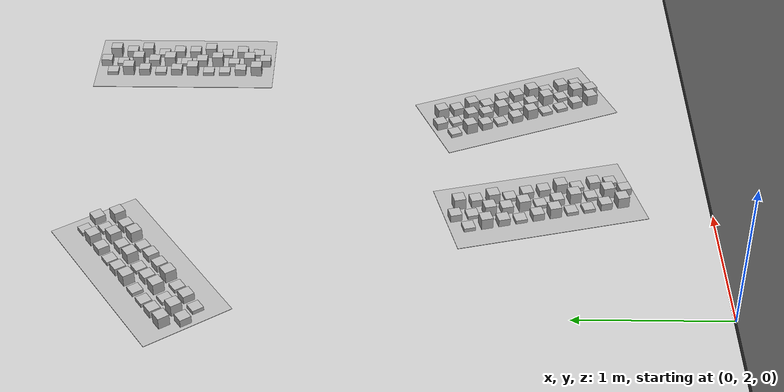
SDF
<sdf version="1.6">
 <world name="default">
  <model name="ground_plane">
   <static>1</static>
   <link name="link">
    <collision name="collision">
     <geometry><plane><normal>0 0 1</normal><size>100 100</size></plane></geometry>
     <surface>
      <contact><collide_bitmask>65535</collide_bitmask></contact>
      <friction><ode><mu>100</mu><mu2>50</mu2></ode></friction>
     </surface>
    </collision>
    <visual name="visual">
     <cast_shadows>0</cast_shadows>
     <geometry><plane><normal>0 0 1</normal><size>100 100</size></plane></geometry>
     <material>
      <script><uri>file://media/materials/scripts/gazebo.material</uri><name>Gazebo/Grey</name></script>
     </material>
    </visual>
   </link>
  </model>
  <model name="frc2016_roughterrain_clone_clone_12_clone">
   <static>1</static>
   <link name="link">
    <visual name="platform">
     <pose>0 0 0.08269 0 -0 0</pose>
     <geometry><box><size>1.27 0.5969 0.003175</size></box></geometry>
    </visual>
    <collision name="platform">
     <pose>0 0 0.08269 0 -0 0</pose>
     <geometry><box><size>1.27 0.5969 0.003175</size></box></geometry>
    </collision>
    <visual name="row1_block1_sm">
     <pose>0.51435 0.1143 0.09698 0 -0 0</pose>
     <geometry><box><size>0.0762 0.0762 0.0254</size></box></geometry>
    </visual>
    <collision name="row1_block1_sm">
     <pose>0.51435 0.1143 0.09698 0 -0 0</pose>
     <geometry><box><size>0.0762 0.0762 0.0254</size></box></geometry>
    </collision>
    <visual name="row1_block2_lg">
     <pose>0.40005 0.1143 0.12238 0 -0 0</pose>
     <geometry><box><size>0.0762 0.0762 0.0762</size></box></geometry>
    </visual>
    <collision name="row1_block2_lg">
     <pose>0.40005 0.1143 0.12238 0 -0 0</pose>
     <geometry><box><size>0.0762 0.0762 0.0762</size></box></geometry>
    </collision>
    <visual name="row1_block3_md">
     <pose>0.28575 0.1143 0.10968 0 -0 0</pose>
     <geometry><box><size>0.0762 0.0762 0.0508</size></box></geometry>
    </visual>
    <collision name="row1_block3_md">
     <pose>0.28575 0.1143 0.10968 0 -0 0</pose>
     <geometry><box><size>0.0762 0.0762 0.0508</size></box></geometry>
    </collision>
    <visual name="row1_block4_sm">
     <pose>0.17145 0.1143 0.09698 0 -0 0</pose>
     <geometry><box><size>0.0762 0.0762 0.0254</size></box></geometry>
    </visual>
    <collision name="row1_block4_sm">
     <pose>0.17145 0.1143 0.09698 0 -0 0</pose>
     <geometry><box><size>0.0762 0.0762 0.0254</size></box></geometry>
    </collision>
    <visual name="row1_block5_md">
     <pose>0.05715 0.1143 0.10968 0 -0 0</pose>
     <geometry><box><size>0.0762 0.0762 0.0508</size></box></geometry>
    </visual>
    <collision name="row1_block5_md">
     <pose>0.05715 0.1143 0.10968 0 -0 0</pose>
     <geometry><box><size>0.0762 0.0762 0.0508</size></box></geometry>
    </collision>
    <visual name="row1_block6_lg">
     <pose>-0.05715 0.1143 0.12238 0 -0 0</pose>
     <geometry><box><size>0.0762 0.0762 0.0762</size></box></geometry>
    </visual>
    <collision name="row1_block6_lg">
     <pose>-0.05715 0.1143 0.12238 0 -0 0</pose>
     <geometry><box><size>0.0762 0.0762 0.0762</size></box></geometry>
    </collision>
    <visual name="row1_block7_sm">
     <pose>-0.17145 0.1143 0.09698 0 -0 0</pose>
     <geometry><box><size>0.0762 0.0762 0.0254</size></box></geometry>
    </visual>
    <collision name="row1_block7_sm">
     <pose>-0.17145 0.1143 0.09698 0 -0 0</pose>
     <geometry><box><size>0.0762 0.0762 0.0254</size></box></geometry>
    </collision>
    <visual name="row1_block8_sm">
     <pose>-0.28575 0.1143 0.09698 0 -0 0</pose>
     <geometry><box><size>0.0762 0.0762 0.0254</size></box></geometry>
    </visual>
    <collision name="row1_block8_sm">
     <pose>-0.28575 0.1143 0.09698 0 -0 0</pose>
     <geometry><box><size>0.0762 0.0762 0.0254</size></box></geometry>
    </collision>
    <visual name="row1_block9_md">
     <pose>-0.40005 0.1143 0.10968 0 -0 0</pose>
     <geometry><box><size>0.0762 0.0762 0.0508</size></box></geometry>
    </visual>
    <collision name="row1_block9_md">
     <pose>-0.40005 0.1143 0.10968 0 -0 0</pose>
     <geometry><box><size>0.0762 0.0762 0.0508</size></box></geometry>
    </collision>
    <visual name="row1_block10_lg">
     <pose>-0.51435 0.1143 0.12238 0 -0 0</pose>
     <geometry><box><size>0.0762 0.0762 0.0762</size></box></geometry>
    </visual>
    <collision name="row1_block10_lg">
     <pose>-0.51435 0.1143 0.12238 0 -0 0</pose>
     <geometry><box><size>0.0762 0.0762 0.0762</size></box></geometry>
    </collision>
    <visual name="row2_block1_md">
     <pose>0.5715 0 0.10968 0 -0 0</pose>
     <geometry><box><size>0.0762 0.0762 0.0508</size></box></geometry>
    </visual>
    <collision name="row2_block1_md">
     <pose>0.5715 0 0.10968 0 -0 0</pose>
     <geometry><box><size>0.0762 0.0762 0.0508</size></box></geometry>
    </collision>
    <visual name="row2_block2_sm">
     <pose>0.4572 0 0.09698 0 -0 0</pose>
     <geometry><box><size>0.0762 0.0762 0.0254</size></box></geometry>
    </visual>
    <collision name="row2_block2_sm">
     <pose>0.4572 0 0.09698 0 -0 0</pose>
     <geometry><box><size>0.0762 0.0762 0.0254</size></box></geometry>
    </collision>
    <visual name="row2_block3_lg">
     <pose>0.3429 0 0.12238 0 -0 0</pose>
     <geometry><box><size>0.0762 0.0762 0.0762</size></box></geometry>
    </visual>
    <collision name="row2_block3_lg">
     <pose>0.3429 0 0.12238 0 -0 0</pose>
     <geometry><box><size>0.0762 0.0762 0.0762</size></box></geometry>
    </collision>
    <visual name="row2_block4_md">
     <pose>0.2286 0 0.10968 0 -0 0</pose>
     <geometry><box><size>0.0762 0.0762 0.0508</size></box></geometry>
    </visual>
    <collision name="row2_block4_md">
     <pose>0.2286 0 0.10968 0 -0 0</pose>
     <geometry><box><size>0.0762 0.0762 0.0508</size></box></geometry>
    </collision>
    <visual name="row2_block5_lg">
     <pose>0.1143 0 0.12238 0 -0 0</pose>
     <geometry><box><size>0.0762 0.0762 0.0762</size></box></geometry>
    </visual>
    <collision name="row2_block5_lg">
     <pose>0.1143 0 0.12238 0 -0 0</pose>
     <geometry><box><size>0.0762 0.0762 0.0762</size></box></geometry>
    </collision>
    <visual name="row2_block6_sm">
     <pose>0 0 0.09698 0 -0 0</pose>
     <geometry><box><size>0.0762 0.0762 0.0254</size></box></geometry>
    </visual>
    <collision name="row2_block6_sm">
     <pose>0 0 0.09698 0 -0 0</pose>
     <geometry><box><size>0.0762 0.0762 0.0254</size></box></geometry>
    </collision>
    <visual name="row2_block7_md">
     <pose>-0.1143 0 0.10968 0 -0 0</pose>
     <geometry><box><size>0.0762 0.0762 0.0508</size></box></geometry>
    </visual>
    <collision name="row2_block7_md">
     <pose>-0.1143 0 0.10968 0 -0 0</pose>
     <geometry><box><size>0.0762 0.0762 0.0508</size></box></geometry>
    </collision>
    <visual name="row2_block8_lg">
     <pose>-0.2286 0 0.12238 0 -0 0</pose>
     <geometry><box><size>0.0762 0.0762 0.0762</size></box></geometry>
    </visual>
    <collision name="row2_block8_lg">
     <pose>-0.2286 0 0.12238 0 -0 0</pose>
     <geometry><box><size>0.0762 0.0762 0.0762</size></box></geometry>
    </collision>
    <visual name="row2_block9_sm">
     <pose>-0.3429 0 0.09698 0 -0 0</pose>
     <geometry><box><size>0.0762 0.0762 0.0254</size></box></geometry>
    </visual>
    <collision name="row2_block9_sm">
     <pose>-0.3429 0 0.09698 0 -0 0</pose>
     <geometry><box><size>0.0762 0.0762 0.0254</size></box></geometry>
    </collision>
    <visual name="row2_block10_lg">
     <pose>-0.4572 0 0.12238 0 -0 0</pose>
     <geometry><box><size>0.0762 0.0762 0.0762</size></box></geometry>
    </visual>
    <collision name="row2_block10_lg">
     <pose>-0.4572 0 0.12238 0 -0 0</pose>
     <geometry><box><size>0.0762 0.0762 0.0762</size></box></geometry>
    </collision>
    <visual name="row2_block11_md">
     <pose>-0.5715 0 0.10968 0 -0 0</pose>
     <geometry><box><size>0.0762 0.0762 0.0508</size></box></geometry>
    </visual>
    <collision name="row2_block11_md">
     <pose>-0.5715 0 0.10968 0 -0 0</pose>
     <geometry><box><size>0.0762 0.0762 0.0508</size></box></geometry>
    </collision>
    <visual name="row3_block1_lg">
     <pose>0.51435 -0.1143 0.12238 0 -0 0</pose>
     <geometry><box><size>0.0762 0.0762 0.0762</size></box></geometry>
    </visual>
    <collision name="row3_block1_lg">
     <pose>0.51435 -0.1143 0.12238 0 -0 0</pose>
     <geometry><box><size>0.0762 0.0762 0.0762</size></box></geometry>
    </collision>
    <visual name="row3_block2_md">
     <pose>0.40005 -0.1143 0.10968 0 -0 0</pose>
     <geometry><box><size>0.0762 0.0762 0.0508</size></box></geometry>
    </visual>
    <collision name="row3_block2_md">
     <pose>0.40005 -0.1143 0.10968 0 -0 0</pose>
     <geometry><box><size>0.0762 0.0762 0.0508</size></box></geometry>
    </collision>
    <visual name="row3_block3_lg">
     <pose>0.28575 -0.1143 0.12238 0 -0 0</pose>
     <geometry><box><size>0.0762 0.0762 0.0762</size></box></geometry>
    </visual>
    <collision name="row3_block3_lg">
     <pose>0.28575 -0.1143 0.12238 0 -0 0</pose>
     <geometry><box><size>0.0762 0.0762 0.0762</size></box></geometry>
    </collision>
    <visual name="row3_block4_sm">
     <pose>0.17145 -0.1143 0.09698 0 -0 0</pose>
     <geometry><box><size>0.0762 0.0762 0.0254</size></box></geometry>
    </visual>
    <collision name="row3_block4_sm">
     <pose>0.17145 -0.1143 0.09698 0 -0 0</pose>
     <geometry><box><size>0.0762 0.0762 0.0254</size></box></geometry>
    </collision>
    <visual name="row3_block5_md">
     <pose>0.05715 -0.1143 0.10968 0 -0 0</pose>
     <geometry><box><size>0.0762 0.0762 0.0508</size></box></geometry>
    </visual>
    <collision name="row3_block5_md">
     <pose>0.05715 -0.1143 0.10968 0 -0 0</pose>
     <geometry><box><size>0.0762 0.0762 0.0508</size></box></geometry>
    </collision>
    <visual name="row3_block6_md">
     <pose>-0.05715 -0.1143 0.10968 0 -0 0</pose>
     <geometry><box><size>0.0762 0.0762 0.0508</size></box></geometry>
    </visual>
    <collision name="row3_block6_md">
     <pose>-0.05715 -0.1143 0.10968 0 -0 0</pose>
     <geometry><box><size>0.0762 0.0762 0.0508</size></box></geometry>
    </collision>
    <visual name="row3_block7_lg">
     <pose>-0.17145 -0.1143 0.12238 0 -0 0</pose>
     <geometry><box><size>0.0762 0.0762 0.0762</size></box></geometry>
    </visual>
    <collision name="row3_block7_lg">
     <pose>-0.17145 -0.1143 0.12238 0 -0 0</pose>
     <geometry><box><size>0.0762 0.0762 0.0762</size></box></geometry>
    </collision>
    <visual name="row3_block8_sm">
     <pose>-0.28575 -0.1143 0.09698 0 -0 0</pose>
     <geometry><box><size>0.0762 0.0762 0.0254</size></box></geometry>
    </visual>
    <collision name="row3_block8_sm">
     <pose>-0.28575 -0.1143 0.09698 0 -0 0</pose>
     <geometry><box><size>0.0762 0.0762 0.0254</size></box></geometry>
    </collision>
    <visual name="row3_block9_md">
     <pose>-0.40005 -0.1143 0.10968 0 -0 0</pose>
     <geometry><box><size>0.0762 0.0762 0.0508</size></box></geometry>
    </visual>
    <collision name="row3_block9_md">
     <pose>-0.40005 -0.1143 0.10968 0 -0 0</pose>
     <geometry><box><size>0.0762 0.0762 0.0508</size></box></geometry>
    </collision>
    <visual name="row3_block10_sm">
     <pose>-0.51435 -0.1143 0.09698 0 -0 0</pose>
     <geometry><box><size>0.0762 0.0762 0.0254</size></box></geometry>
    </visual>
    <collision name="row3_block10_sm">
     <pose>-0.51435 -0.1143 0.09698 0 -0 0</pose>
     <geometry><box><size>0.0762 0.0762 0.0254</size></box></geometry>
    </collision>
   </link>
   <pose>2.0731 3.22834 0 0 -0 1.96</pose>
  </model>
  <model name="frc2016_roughterrain_clone_clone_12_clone_clone_clone">
   <static>1</static>
   <link name="link">
    <visual name="platform">
     <pose>0 0 0.08269 0 -0 0</pose>
     <geometry><box><size>1.27 0.5969 0.003175</size></box></geometry>
    </visual>
    <collision name="platform">
     <pose>0 0 0.08269 0 -0 0</pose>
     <geometry><box><size>1.27 0.5969 0.003175</size></box></geometry>
    </collision>
    <visual name="row1_block1_sm">
     <pose>0.51435 0.1143 0.09698 0 -0 0</pose>
     <geometry><box><size>0.0762 0.0762 0.0254</size></box></geometry>
    </visual>
    <collision name="row1_block1_sm">
     <pose>0.51435 0.1143 0.09698 0 -0 0</pose>
     <geometry><box><size>0.0762 0.0762 0.0254</size></box></geometry>
    </collision>
    <visual name="row1_block2_lg">
     <pose>0.40005 0.1143 0.12238 0 -0 0</pose>
     <geometry><box><size>0.0762 0.0762 0.0762</size></box></geometry>
    </visual>
    <collision name="row1_block2_lg">
     <pose>0.40005 0.1143 0.12238 0 -0 0</pose>
     <geometry><box><size>0.0762 0.0762 0.0762</size></box></geometry>
    </collision>
    <visual name="row1_block3_md">
     <pose>0.28575 0.1143 0.10968 0 -0 0</pose>
     <geometry><box><size>0.0762 0.0762 0.0508</size></box></geometry>
    </visual>
    <collision name="row1_block3_md">
     <pose>0.28575 0.1143 0.10968 0 -0 0</pose>
     <geometry><box><size>0.0762 0.0762 0.0508</size></box></geometry>
    </collision>
    <visual name="row1_block4_sm">
     <pose>0.17145 0.1143 0.09698 0 -0 0</pose>
     <geometry><box><size>0.0762 0.0762 0.0254</size></box></geometry>
    </visual>
    <collision name="row1_block4_sm">
     <pose>0.17145 0.1143 0.09698 0 -0 0</pose>
     <geometry><box><size>0.0762 0.0762 0.0254</size></box></geometry>
    </collision>
    <visual name="row1_block5_md">
     <pose>0.05715 0.1143 0.10968 0 -0 0</pose>
     <geometry><box><size>0.0762 0.0762 0.0508</size></box></geometry>
    </visual>
    <collision name="row1_block5_md">
     <pose>0.05715 0.1143 0.10968 0 -0 0</pose>
     <geometry><box><size>0.0762 0.0762 0.0508</size></box></geometry>
    </collision>
    <visual name="row1_block6_lg">
     <pose>-0.05715 0.1143 0.12238 0 -0 0</pose>
     <geometry><box><size>0.0762 0.0762 0.0762</size></box></geometry>
    </visual>
    <collision name="row1_block6_lg">
     <pose>-0.05715 0.1143 0.12238 0 -0 0</pose>
     <geometry><box><size>0.0762 0.0762 0.0762</size></box></geometry>
    </collision>
    <visual name="row1_block7_sm">
     <pose>-0.17145 0.1143 0.09698 0 -0 0</pose>
     <geometry><box><size>0.0762 0.0762 0.0254</size></box></geometry>
    </visual>
    <collision name="row1_block7_sm">
     <pose>-0.17145 0.1143 0.09698 0 -0 0</pose>
     <geometry><box><size>0.0762 0.0762 0.0254</size></box></geometry>
    </collision>
    <visual name="row1_block8_sm">
     <pose>-0.28575 0.1143 0.09698 0 -0 0</pose>
     <geometry><box><size>0.0762 0.0762 0.0254</size></box></geometry>
    </visual>
    <collision name="row1_block8_sm">
     <pose>-0.28575 0.1143 0.09698 0 -0 0</pose>
     <geometry><box><size>0.0762 0.0762 0.0254</size></box></geometry>
    </collision>
    <visual name="row1_block9_md">
     <pose>-0.40005 0.1143 0.10968 0 -0 0</pose>
     <geometry><box><size>0.0762 0.0762 0.0508</size></box></geometry>
    </visual>
    <collision name="row1_block9_md">
     <pose>-0.40005 0.1143 0.10968 0 -0 0</pose>
     <geometry><box><size>0.0762 0.0762 0.0508</size></box></geometry>
    </collision>
    <visual name="row1_block10_lg">
     <pose>-0.51435 0.1143 0.12238 0 -0 0</pose>
     <geometry><box><size>0.0762 0.0762 0.0762</size></box></geometry>
    </visual>
    <collision name="row1_block10_lg">
     <pose>-0.51435 0.1143 0.12238 0 -0 0</pose>
     <geometry><box><size>0.0762 0.0762 0.0762</size></box></geometry>
    </collision>
    <visual name="row2_block1_md">
     <pose>0.5715 0 0.10968 0 -0 0</pose>
     <geometry><box><size>0.0762 0.0762 0.0508</size></box></geometry>
    </visual>
    <collision name="row2_block1_md">
     <pose>0.5715 0 0.10968 0 -0 0</pose>
     <geometry><box><size>0.0762 0.0762 0.0508</size></box></geometry>
    </collision>
    <visual name="row2_block2_sm">
     <pose>0.4572 0 0.09698 0 -0 0</pose>
     <geometry><box><size>0.0762 0.0762 0.0254</size></box></geometry>
    </visual>
    <collision name="row2_block2_sm">
     <pose>0.4572 0 0.09698 0 -0 0</pose>
     <geometry><box><size>0.0762 0.0762 0.0254</size></box></geometry>
    </collision>
    <visual name="row2_block3_lg">
     <pose>0.3429 0 0.12238 0 -0 0</pose>
     <geometry><box><size>0.0762 0.0762 0.0762</size></box></geometry>
    </visual>
    <collision name="row2_block3_lg">
     <pose>0.3429 0 0.12238 0 -0 0</pose>
     <geometry><box><size>0.0762 0.0762 0.0762</size></box></geometry>
    </collision>
    <visual name="row2_block4_md">
     <pose>0.2286 0 0.10968 0 -0 0</pose>
     <geometry><box><size>0.0762 0.0762 0.0508</size></box></geometry>
    </visual>
    <collision name="row2_block4_md">
     <pose>0.2286 0 0.10968 0 -0 0</pose>
     <geometry><box><size>0.0762 0.0762 0.0508</size></box></geometry>
    </collision>
    <visual name="row2_block5_lg">
     <pose>0.1143 0 0.12238 0 -0 0</pose>
     <geometry><box><size>0.0762 0.0762 0.0762</size></box></geometry>
    </visual>
    <collision name="row2_block5_lg">
     <pose>0.1143 0 0.12238 0 -0 0</pose>
     <geometry><box><size>0.0762 0.0762 0.0762</size></box></geometry>
    </collision>
    <visual name="row2_block6_sm">
     <pose>0 0 0.09698 0 -0 0</pose>
     <geometry><box><size>0.0762 0.0762 0.0254</size></box></geometry>
    </visual>
    <collision name="row2_block6_sm">
     <pose>0 0 0.09698 0 -0 0</pose>
     <geometry><box><size>0.0762 0.0762 0.0254</size></box></geometry>
    </collision>
    <visual name="row2_block7_md">
     <pose>-0.1143 0 0.10968 0 -0 0</pose>
     <geometry><box><size>0.0762 0.0762 0.0508</size></box></geometry>
    </visual>
    <collision name="row2_block7_md">
     <pose>-0.1143 0 0.10968 0 -0 0</pose>
     <geometry><box><size>0.0762 0.0762 0.0508</size></box></geometry>
    </collision>
    <visual name="row2_block8_lg">
     <pose>-0.2286 0 0.12238 0 -0 0</pose>
     <geometry><box><size>0.0762 0.0762 0.0762</size></box></geometry>
    </visual>
    <collision name="row2_block8_lg">
     <pose>-0.2286 0 0.12238 0 -0 0</pose>
     <geometry><box><size>0.0762 0.0762 0.0762</size></box></geometry>
    </collision>
    <visual name="row2_block9_sm">
     <pose>-0.3429 0 0.09698 0 -0 0</pose>
     <geometry><box><size>0.0762 0.0762 0.0254</size></box></geometry>
    </visual>
    <collision name="row2_block9_sm">
     <pose>-0.3429 0 0.09698 0 -0 0</pose>
     <geometry><box><size>0.0762 0.0762 0.0254</size></box></geometry>
    </collision>
    <visual name="row2_block10_lg">
     <pose>-0.4572 0 0.12238 0 -0 0</pose>
     <geometry><box><size>0.0762 0.0762 0.0762</size></box></geometry>
    </visual>
    <collision name="row2_block10_lg">
     <pose>-0.4572 0 0.12238 0 -0 0</pose>
     <geometry><box><size>0.0762 0.0762 0.0762</size></box></geometry>
    </collision>
    <visual name="row2_block11_md">
     <pose>-0.5715 0 0.10968 0 -0 0</pose>
     <geometry><box><size>0.0762 0.0762 0.0508</size></box></geometry>
    </visual>
    <collision name="row2_block11_md">
     <pose>-0.5715 0 0.10968 0 -0 0</pose>
     <geometry><box><size>0.0762 0.0762 0.0508</size></box></geometry>
    </collision>
    <visual name="row3_block1_lg">
     <pose>0.51435 -0.1143 0.12238 0 -0 0</pose>
     <geometry><box><size>0.0762 0.0762 0.0762</size></box></geometry>
    </visual>
    <collision name="row3_block1_lg">
     <pose>0.51435 -0.1143 0.12238 0 -0 0</pose>
     <geometry><box><size>0.0762 0.0762 0.0762</size></box></geometry>
    </collision>
    <visual name="row3_block2_md">
     <pose>0.40005 -0.1143 0.10968 0 -0 0</pose>
     <geometry><box><size>0.0762 0.0762 0.0508</size></box></geometry>
    </visual>
    <collision name="row3_block2_md">
     <pose>0.40005 -0.1143 0.10968 0 -0 0</pose>
     <geometry><box><size>0.0762 0.0762 0.0508</size></box></geometry>
    </collision>
    <visual name="row3_block3_lg">
     <pose>0.28575 -0.1143 0.12238 0 -0 0</pose>
     <geometry><box><size>0.0762 0.0762 0.0762</size></box></geometry>
    </visual>
    <collision name="row3_block3_lg">
     <pose>0.28575 -0.1143 0.12238 0 -0 0</pose>
     <geometry><box><size>0.0762 0.0762 0.0762</size></box></geometry>
    </collision>
    <visual name="row3_block4_sm">
     <pose>0.17145 -0.1143 0.09698 0 -0 0</pose>
     <geometry><box><size>0.0762 0.0762 0.0254</size></box></geometry>
    </visual>
    <collision name="row3_block4_sm">
     <pose>0.17145 -0.1143 0.09698 0 -0 0</pose>
     <geometry><box><size>0.0762 0.0762 0.0254</size></box></geometry>
    </collision>
    <visual name="row3_block5_md">
     <pose>0.05715 -0.1143 0.10968 0 -0 0</pose>
     <geometry><box><size>0.0762 0.0762 0.0508</size></box></geometry>
    </visual>
    <collision name="row3_block5_md">
     <pose>0.05715 -0.1143 0.10968 0 -0 0</pose>
     <geometry><box><size>0.0762 0.0762 0.0508</size></box></geometry>
    </collision>
    <visual name="row3_block6_md">
     <pose>-0.05715 -0.1143 0.10968 0 -0 0</pose>
     <geometry><box><size>0.0762 0.0762 0.0508</size></box></geometry>
    </visual>
    <collision name="row3_block6_md">
     <pose>-0.05715 -0.1143 0.10968 0 -0 0</pose>
     <geometry><box><size>0.0762 0.0762 0.0508</size></box></geometry>
    </collision>
    <visual name="row3_block7_lg">
     <pose>-0.17145 -0.1143 0.12238 0 -0 0</pose>
     <geometry><box><size>0.0762 0.0762 0.0762</size></box></geometry>
    </visual>
    <collision name="row3_block7_lg">
     <pose>-0.17145 -0.1143 0.12238 0 -0 0</pose>
     <geometry><box><size>0.0762 0.0762 0.0762</size></box></geometry>
    </collision>
    <visual name="row3_block8_sm">
     <pose>-0.28575 -0.1143 0.09698 0 -0 0</pose>
     <geometry><box><size>0.0762 0.0762 0.0254</size></box></geometry>
    </visual>
    <collision name="row3_block8_sm">
     <pose>-0.28575 -0.1143 0.09698 0 -0 0</pose>
     <geometry><box><size>0.0762 0.0762 0.0254</size></box></geometry>
    </collision>
    <visual name="row3_block9_md">
     <pose>-0.40005 -0.1143 0.10968 0 -0 0</pose>
     <geometry><box><size>0.0762 0.0762 0.0508</size></box></geometry>
    </visual>
    <collision name="row3_block9_md">
     <pose>-0.40005 -0.1143 0.10968 0 -0 0</pose>
     <geometry><box><size>0.0762 0.0762 0.0508</size></box></geometry>
    </collision>
    <visual name="row3_block10_sm">
     <pose>-0.51435 -0.1143 0.09698 0 -0 0</pose>
     <geometry><box><size>0.0762 0.0762 0.0254</size></box></geometry>
    </visual>
    <collision name="row3_block10_sm">
     <pose>-0.51435 -0.1143 0.09698 0 -0 0</pose>
     <geometry><box><size>0.0762 0.0762 0.0254</size></box></geometry>
    </collision>
   </link>
   <pose>1.00331 3.12412 0 0 -0 1.82</pose>
  </model>
  <model name="frc2016_roughterrain_clone_clone_10_clone">
   <static>1</static>
   <link name="link">
    <visual name="platform">
     <pose>0 0 0.08269 0 -0 0</pose>
     <geometry><box><size>1.27 0.5969 0.003175</size></box></geometry>
    </visual>
    <collision name="platform">
     <pose>0 0 0.08269 0 -0 0</pose>
     <geometry><box><size>1.27 0.5969 0.003175</size></box></geometry>
    </collision>
    <visual name="row1_block1_sm">
     <pose>0.51435 0.1143 0.09698 0 -0 0</pose>
     <geometry><box><size>0.0762 0.0762 0.0254</size></box></geometry>
    </visual>
    <collision name="row1_block1_sm">
     <pose>0.51435 0.1143 0.09698 0 -0 0</pose>
     <geometry><box><size>0.0762 0.0762 0.0254</size></box></geometry>
    </collision>
    <visual name="row1_block2_lg">
     <pose>0.40005 0.1143 0.12238 0 -0 0</pose>
     <geometry><box><size>0.0762 0.0762 0.0762</size></box></geometry>
    </visual>
    <collision name="row1_block2_lg">
     <pose>0.40005 0.1143 0.12238 0 -0 0</pose>
     <geometry><box><size>0.0762 0.0762 0.0762</size></box></geometry>
    </collision>
    <visual name="row1_block3_md">
     <pose>0.28575 0.1143 0.10968 0 -0 0</pose>
     <geometry><box><size>0.0762 0.0762 0.0508</size></box></geometry>
    </visual>
    <collision name="row1_block3_md">
     <pose>0.28575 0.1143 0.10968 0 -0 0</pose>
     <geometry><box><size>0.0762 0.0762 0.0508</size></box></geometry>
    </collision>
    <visual name="row1_block4_sm">
     <pose>0.17145 0.1143 0.09698 0 -0 0</pose>
     <geometry><box><size>0.0762 0.0762 0.0254</size></box></geometry>
    </visual>
    <collision name="row1_block4_sm">
     <pose>0.17145 0.1143 0.09698 0 -0 0</pose>
     <geometry><box><size>0.0762 0.0762 0.0254</size></box></geometry>
    </collision>
    <visual name="row1_block5_md">
     <pose>0.05715 0.1143 0.10968 0 -0 0</pose>
     <geometry><box><size>0.0762 0.0762 0.0508</size></box></geometry>
    </visual>
    <collision name="row1_block5_md">
     <pose>0.05715 0.1143 0.10968 0 -0 0</pose>
     <geometry><box><size>0.0762 0.0762 0.0508</size></box></geometry>
    </collision>
    <visual name="row1_block6_lg">
     <pose>-0.05715 0.1143 0.12238 0 -0 0</pose>
     <geometry><box><size>0.0762 0.0762 0.0762</size></box></geometry>
    </visual>
    <collision name="row1_block6_lg">
     <pose>-0.05715 0.1143 0.12238 0 -0 0</pose>
     <geometry><box><size>0.0762 0.0762 0.0762</size></box></geometry>
    </collision>
    <visual name="row1_block7_sm">
     <pose>-0.17145 0.1143 0.09698 0 -0 0</pose>
     <geometry><box><size>0.0762 0.0762 0.0254</size></box></geometry>
    </visual>
    <collision name="row1_block7_sm">
     <pose>-0.17145 0.1143 0.09698 0 -0 0</pose>
     <geometry><box><size>0.0762 0.0762 0.0254</size></box></geometry>
    </collision>
    <visual name="row1_block8_sm">
     <pose>-0.28575 0.1143 0.09698 0 -0 0</pose>
     <geometry><box><size>0.0762 0.0762 0.0254</size></box></geometry>
    </visual>
    <collision name="row1_block8_sm">
     <pose>-0.28575 0.1143 0.09698 0 -0 0</pose>
     <geometry><box><size>0.0762 0.0762 0.0254</size></box></geometry>
    </collision>
    <visual name="row1_block9_md">
     <pose>-0.40005 0.1143 0.10968 0 -0 0</pose>
     <geometry><box><size>0.0762 0.0762 0.0508</size></box></geometry>
    </visual>
    <collision name="row1_block9_md">
     <pose>-0.40005 0.1143 0.10968 0 -0 0</pose>
     <geometry><box><size>0.0762 0.0762 0.0508</size></box></geometry>
    </collision>
    <visual name="row1_block10_lg">
     <pose>-0.51435 0.1143 0.12238 0 -0 0</pose>
     <geometry><box><size>0.0762 0.0762 0.0762</size></box></geometry>
    </visual>
    <collision name="row1_block10_lg">
     <pose>-0.51435 0.1143 0.12238 0 -0 0</pose>
     <geometry><box><size>0.0762 0.0762 0.0762</size></box></geometry>
    </collision>
    <visual name="row2_block1_md">
     <pose>0.5715 0 0.10968 0 -0 0</pose>
     <geometry><box><size>0.0762 0.0762 0.0508</size></box></geometry>
    </visual>
    <collision name="row2_block1_md">
     <pose>0.5715 0 0.10968 0 -0 0</pose>
     <geometry><box><size>0.0762 0.0762 0.0508</size></box></geometry>
    </collision>
    <visual name="row2_block2_sm">
     <pose>0.4572 0 0.09698 0 -0 0</pose>
     <geometry><box><size>0.0762 0.0762 0.0254</size></box></geometry>
    </visual>
    <collision name="row2_block2_sm">
     <pose>0.4572 0 0.09698 0 -0 0</pose>
     <geometry><box><size>0.0762 0.0762 0.0254</size></box></geometry>
    </collision>
    <visual name="row2_block3_lg">
     <pose>0.3429 0 0.12238 0 -0 0</pose>
     <geometry><box><size>0.0762 0.0762 0.0762</size></box></geometry>
    </visual>
    <collision name="row2_block3_lg">
     <pose>0.3429 0 0.12238 0 -0 0</pose>
     <geometry><box><size>0.0762 0.0762 0.0762</size></box></geometry>
    </collision>
    <visual name="row2_block4_md">
     <pose>0.2286 0 0.10968 0 -0 0</pose>
     <geometry><box><size>0.0762 0.0762 0.0508</size></box></geometry>
    </visual>
    <collision name="row2_block4_md">
     <pose>0.2286 0 0.10968 0 -0 0</pose>
     <geometry><box><size>0.0762 0.0762 0.0508</size></box></geometry>
    </collision>
    <visual name="row2_block5_lg">
     <pose>0.1143 0 0.12238 0 -0 0</pose>
     <geometry><box><size>0.0762 0.0762 0.0762</size></box></geometry>
    </visual>
    <collision name="row2_block5_lg">
     <pose>0.1143 0 0.12238 0 -0 0</pose>
     <geometry><box><size>0.0762 0.0762 0.0762</size></box></geometry>
    </collision>
    <visual name="row2_block6_sm">
     <pose>0 0 0.09698 0 -0 0</pose>
     <geometry><box><size>0.0762 0.0762 0.0254</size></box></geometry>
    </visual>
    <collision name="row2_block6_sm">
     <pose>0 0 0.09698 0 -0 0</pose>
     <geometry><box><size>0.0762 0.0762 0.0254</size></box></geometry>
    </collision>
    <visual name="row2_block7_md">
     <pose>-0.1143 0 0.10968 0 -0 0</pose>
     <geometry><box><size>0.0762 0.0762 0.0508</size></box></geometry>
    </visual>
    <collision name="row2_block7_md">
     <pose>-0.1143 0 0.10968 0 -0 0</pose>
     <geometry><box><size>0.0762 0.0762 0.0508</size></box></geometry>
    </collision>
    <visual name="row2_block8_lg">
     <pose>-0.2286 0 0.12238 0 -0 0</pose>
     <geometry><box><size>0.0762 0.0762 0.0762</size></box></geometry>
    </visual>
    <collision name="row2_block8_lg">
     <pose>-0.2286 0 0.12238 0 -0 0</pose>
     <geometry><box><size>0.0762 0.0762 0.0762</size></box></geometry>
    </collision>
    <visual name="row2_block9_sm">
     <pose>-0.3429 0 0.09698 0 -0 0</pose>
     <geometry><box><size>0.0762 0.0762 0.0254</size></box></geometry>
    </visual>
    <collision name="row2_block9_sm">
     <pose>-0.3429 0 0.09698 0 -0 0</pose>
     <geometry><box><size>0.0762 0.0762 0.0254</size></box></geometry>
    </collision>
    <visual name="row2_block10_lg">
     <pose>-0.4572 0 0.12238 0 -0 0</pose>
     <geometry><box><size>0.0762 0.0762 0.0762</size></box></geometry>
    </visual>
    <collision name="row2_block10_lg">
     <pose>-0.4572 0 0.12238 0 -0 0</pose>
     <geometry><box><size>0.0762 0.0762 0.0762</size></box></geometry>
    </collision>
    <visual name="row2_block11_md">
     <pose>-0.5715 0 0.10968 0 -0 0</pose>
     <geometry><box><size>0.0762 0.0762 0.0508</size></box></geometry>
    </visual>
    <collision name="row2_block11_md">
     <pose>-0.5715 0 0.10968 0 -0 0</pose>
     <geometry><box><size>0.0762 0.0762 0.0508</size></box></geometry>
    </collision>
    <visual name="row3_block1_lg">
     <pose>0.51435 -0.1143 0.12238 0 -0 0</pose>
     <geometry><box><size>0.0762 0.0762 0.0762</size></box></geometry>
    </visual>
    <collision name="row3_block1_lg">
     <pose>0.51435 -0.1143 0.12238 0 -0 0</pose>
     <geometry><box><size>0.0762 0.0762 0.0762</size></box></geometry>
    </collision>
    <visual name="row3_block2_md">
     <pose>0.40005 -0.1143 0.10968 0 -0 0</pose>
     <geometry><box><size>0.0762 0.0762 0.0508</size></box></geometry>
    </visual>
    <collision name="row3_block2_md">
     <pose>0.40005 -0.1143 0.10968 0 -0 0</pose>
     <geometry><box><size>0.0762 0.0762 0.0508</size></box></geometry>
    </collision>
    <visual name="row3_block3_lg">
     <pose>0.28575 -0.1143 0.12238 0 -0 0</pose>
     <geometry><box><size>0.0762 0.0762 0.0762</size></box></geometry>
    </visual>
    <collision name="row3_block3_lg">
     <pose>0.28575 -0.1143 0.12238 0 -0 0</pose>
     <geometry><box><size>0.0762 0.0762 0.0762</size></box></geometry>
    </collision>
    <visual name="row3_block4_sm">
     <pose>0.17145 -0.1143 0.09698 0 -0 0</pose>
     <geometry><box><size>0.0762 0.0762 0.0254</size></box></geometry>
    </visual>
    <collision name="row3_block4_sm">
     <pose>0.17145 -0.1143 0.09698 0 -0 0</pose>
     <geometry><box><size>0.0762 0.0762 0.0254</size></box></geometry>
    </collision>
    <visual name="row3_block5_md">
     <pose>0.05715 -0.1143 0.10968 0 -0 0</pose>
     <geometry><box><size>0.0762 0.0762 0.0508</size></box></geometry>
    </visual>
    <collision name="row3_block5_md">
     <pose>0.05715 -0.1143 0.10968 0 -0 0</pose>
     <geometry><box><size>0.0762 0.0762 0.0508</size></box></geometry>
    </collision>
    <visual name="row3_block6_md">
     <pose>-0.05715 -0.1143 0.10968 0 -0 0</pose>
     <geometry><box><size>0.0762 0.0762 0.0508</size></box></geometry>
    </visual>
    <collision name="row3_block6_md">
     <pose>-0.05715 -0.1143 0.10968 0 -0 0</pose>
     <geometry><box><size>0.0762 0.0762 0.0508</size></box></geometry>
    </collision>
    <visual name="row3_block7_lg">
     <pose>-0.17145 -0.1143 0.12238 0 -0 0</pose>
     <geometry><box><size>0.0762 0.0762 0.0762</size></box></geometry>
    </visual>
    <collision name="row3_block7_lg">
     <pose>-0.17145 -0.1143 0.12238 0 -0 0</pose>
     <geometry><box><size>0.0762 0.0762 0.0762</size></box></geometry>
    </collision>
    <visual name="row3_block8_sm">
     <pose>-0.28575 -0.1143 0.09698 0 -0 0</pose>
     <geometry><box><size>0.0762 0.0762 0.0254</size></box></geometry>
    </visual>
    <collision name="row3_block8_sm">
     <pose>-0.28575 -0.1143 0.09698 0 -0 0</pose>
     <geometry><box><size>0.0762 0.0762 0.0254</size></box></geometry>
    </collision>
    <visual name="row3_block9_md">
     <pose>-0.40005 -0.1143 0.10968 0 -0 0</pose>
     <geometry><box><size>0.0762 0.0762 0.0508</size></box></geometry>
    </visual>
    <collision name="row3_block9_md">
     <pose>-0.40005 -0.1143 0.10968 0 -0 0</pose>
     <geometry><box><size>0.0762 0.0762 0.0508</size></box></geometry>
    </collision>
    <visual name="row3_block10_sm">
     <pose>-0.51435 -0.1143 0.09698 0 -0 0</pose>
     <geometry><box><size>0.0762 0.0762 0.0254</size></box></geometry>
    </visual>
    <collision name="row3_block10_sm">
     <pose>-0.51435 -0.1143 0.09698 0 -0 0</pose>
     <geometry><box><size>0.0762 0.0762 0.0254</size></box></geometry>
    </collision>
   </link>
   <pose>2.60493 5.58309 0 0 -0 1.57</pose>
  </model>
  <model name="frc2016_roughterrain_clone_clone_12_clone_clone_clone_clone_clone_0_clone">
   <static>1</static>
   <link name="link">
    <visual name="platform">
     <pose>0 0 0.08269 0 -0 0</pose>
     <geometry><box><size>1.27 0.5969 0.003175</size></box></geometry>
    </visual>
    <collision name="platform">
     <pose>0 0 0.08269 0 -0 0</pose>
     <geometry><box><size>1.27 0.5969 0.003175</size></box></geometry>
    </collision>
    <visual name="row1_block1_sm">
     <pose>0.51435 0.1143 0.09698 0 -0 0</pose>
     <geometry><box><size>0.0762 0.0762 0.0254</size></box></geometry>
    </visual>
    <collision name="row1_block1_sm">
     <pose>0.51435 0.1143 0.09698 0 -0 0</pose>
     <geometry><box><size>0.0762 0.0762 0.0254</size></box></geometry>
    </collision>
    <visual name="row1_block2_lg">
     <pose>0.40005 0.1143 0.12238 0 -0 0</pose>
     <geometry><box><size>0.0762 0.0762 0.0762</size></box></geometry>
    </visual>
    <collision name="row1_block2_lg">
     <pose>0.40005 0.1143 0.12238 0 -0 0</pose>
     <geometry><box><size>0.0762 0.0762 0.0762</size></box></geometry>
    </collision>
    <visual name="row1_block3_md">
     <pose>0.28575 0.1143 0.10968 0 -0 0</pose>
     <geometry><box><size>0.0762 0.0762 0.0508</size></box></geometry>
    </visual>
    <collision name="row1_block3_md">
     <pose>0.28575 0.1143 0.10968 0 -0 0</pose>
     <geometry><box><size>0.0762 0.0762 0.0508</size></box></geometry>
    </collision>
    <visual name="row1_block4_sm">
     <pose>0.17145 0.1143 0.09698 0 -0 0</pose>
     <geometry><box><size>0.0762 0.0762 0.0254</size></box></geometry>
    </visual>
    <collision name="row1_block4_sm">
     <pose>0.17145 0.1143 0.09698 0 -0 0</pose>
     <geometry><box><size>0.0762 0.0762 0.0254</size></box></geometry>
    </collision>
    <visual name="row1_block5_md">
     <pose>0.05715 0.1143 0.10968 0 -0 0</pose>
     <geometry><box><size>0.0762 0.0762 0.0508</size></box></geometry>
    </visual>
    <collision name="row1_block5_md">
     <pose>0.05715 0.1143 0.10968 0 -0 0</pose>
     <geometry><box><size>0.0762 0.0762 0.0508</size></box></geometry>
    </collision>
    <visual name="row1_block6_lg">
     <pose>-0.05715 0.1143 0.12238 0 -0 0</pose>
     <geometry><box><size>0.0762 0.0762 0.0762</size></box></geometry>
    </visual>
    <collision name="row1_block6_lg">
     <pose>-0.05715 0.1143 0.12238 0 -0 0</pose>
     <geometry><box><size>0.0762 0.0762 0.0762</size></box></geometry>
    </collision>
    <visual name="row1_block7_sm">
     <pose>-0.17145 0.1143 0.09698 0 -0 0</pose>
     <geometry><box><size>0.0762 0.0762 0.0254</size></box></geometry>
    </visual>
    <collision name="row1_block7_sm">
     <pose>-0.17145 0.1143 0.09698 0 -0 0</pose>
     <geometry><box><size>0.0762 0.0762 0.0254</size></box></geometry>
    </collision>
    <visual name="row1_block8_sm">
     <pose>-0.28575 0.1143 0.09698 0 -0 0</pose>
     <geometry><box><size>0.0762 0.0762 0.0254</size></box></geometry>
    </visual>
    <collision name="row1_block8_sm">
     <pose>-0.28575 0.1143 0.09698 0 -0 0</pose>
     <geometry><box><size>0.0762 0.0762 0.0254</size></box></geometry>
    </collision>
    <visual name="row1_block9_md">
     <pose>-0.40005 0.1143 0.10968 0 -0 0</pose>
     <geometry><box><size>0.0762 0.0762 0.0508</size></box></geometry>
    </visual>
    <collision name="row1_block9_md">
     <pose>-0.40005 0.1143 0.10968 0 -0 0</pose>
     <geometry><box><size>0.0762 0.0762 0.0508</size></box></geometry>
    </collision>
    <visual name="row1_block10_lg">
     <pose>-0.51435 0.1143 0.12238 0 -0 0</pose>
     <geometry><box><size>0.0762 0.0762 0.0762</size></box></geometry>
    </visual>
    <collision name="row1_block10_lg">
     <pose>-0.51435 0.1143 0.12238 0 -0 0</pose>
     <geometry><box><size>0.0762 0.0762 0.0762</size></box></geometry>
    </collision>
    <visual name="row2_block1_md">
     <pose>0.5715 0 0.10968 0 -0 0</pose>
     <geometry><box><size>0.0762 0.0762 0.0508</size></box></geometry>
    </visual>
    <collision name="row2_block1_md">
     <pose>0.5715 0 0.10968 0 -0 0</pose>
     <geometry><box><size>0.0762 0.0762 0.0508</size></box></geometry>
    </collision>
    <visual name="row2_block2_sm">
     <pose>0.4572 0 0.09698 0 -0 0</pose>
     <geometry><box><size>0.0762 0.0762 0.0254</size></box></geometry>
    </visual>
    <collision name="row2_block2_sm">
     <pose>0.4572 0 0.09698 0 -0 0</pose>
     <geometry><box><size>0.0762 0.0762 0.0254</size></box></geometry>
    </collision>
    <visual name="row2_block3_lg">
     <pose>0.3429 0 0.12238 0 -0 0</pose>
     <geometry><box><size>0.0762 0.0762 0.0762</size></box></geometry>
    </visual>
    <collision name="row2_block3_lg">
     <pose>0.3429 0 0.12238 0 -0 0</pose>
     <geometry><box><size>0.0762 0.0762 0.0762</size></box></geometry>
    </collision>
    <visual name="row2_block4_md">
     <pose>0.2286 0 0.10968 0 -0 0</pose>
     <geometry><box><size>0.0762 0.0762 0.0508</size></box></geometry>
    </visual>
    <collision name="row2_block4_md">
     <pose>0.2286 0 0.10968 0 -0 0</pose>
     <geometry><box><size>0.0762 0.0762 0.0508</size></box></geometry>
    </collision>
    <visual name="row2_block5_lg">
     <pose>0.1143 0 0.12238 0 -0 0</pose>
     <geometry><box><size>0.0762 0.0762 0.0762</size></box></geometry>
    </visual>
    <collision name="row2_block5_lg">
     <pose>0.1143 0 0.12238 0 -0 0</pose>
     <geometry><box><size>0.0762 0.0762 0.0762</size></box></geometry>
    </collision>
    <visual name="row2_block6_sm">
     <pose>0 0 0.09698 0 -0 0</pose>
     <geometry><box><size>0.0762 0.0762 0.0254</size></box></geometry>
    </visual>
    <collision name="row2_block6_sm">
     <pose>0 0 0.09698 0 -0 0</pose>
     <geometry><box><size>0.0762 0.0762 0.0254</size></box></geometry>
    </collision>
    <visual name="row2_block7_md">
     <pose>-0.1143 0 0.10968 0 -0 0</pose>
     <geometry><box><size>0.0762 0.0762 0.0508</size></box></geometry>
    </visual>
    <collision name="row2_block7_md">
     <pose>-0.1143 0 0.10968 0 -0 0</pose>
     <geometry><box><size>0.0762 0.0762 0.0508</size></box></geometry>
    </collision>
    <visual name="row2_block8_lg">
     <pose>-0.2286 0 0.12238 0 -0 0</pose>
     <geometry><box><size>0.0762 0.0762 0.0762</size></box></geometry>
    </visual>
    <collision name="row2_block8_lg">
     <pose>-0.2286 0 0.12238 0 -0 0</pose>
     <geometry><box><size>0.0762 0.0762 0.0762</size></box></geometry>
    </collision>
    <visual name="row2_block9_sm">
     <pose>-0.3429 0 0.09698 0 -0 0</pose>
     <geometry><box><size>0.0762 0.0762 0.0254</size></box></geometry>
    </visual>
    <collision name="row2_block9_sm">
     <pose>-0.3429 0 0.09698 0 -0 0</pose>
     <geometry><box><size>0.0762 0.0762 0.0254</size></box></geometry>
    </collision>
    <visual name="row2_block10_lg">
     <pose>-0.4572 0 0.12238 0 -0 0</pose>
     <geometry><box><size>0.0762 0.0762 0.0762</size></box></geometry>
    </visual>
    <collision name="row2_block10_lg">
     <pose>-0.4572 0 0.12238 0 -0 0</pose>
     <geometry><box><size>0.0762 0.0762 0.0762</size></box></geometry>
    </collision>
    <visual name="row2_block11_md">
     <pose>-0.5715 0 0.10968 0 -0 0</pose>
     <geometry><box><size>0.0762 0.0762 0.0508</size></box></geometry>
    </visual>
    <collision name="row2_block11_md">
     <pose>-0.5715 0 0.10968 0 -0 0</pose>
     <geometry><box><size>0.0762 0.0762 0.0508</size></box></geometry>
    </collision>
    <visual name="row3_block1_lg">
     <pose>0.51435 -0.1143 0.12238 0 -0 0</pose>
     <geometry><box><size>0.0762 0.0762 0.0762</size></box></geometry>
    </visual>
    <collision name="row3_block1_lg">
     <pose>0.51435 -0.1143 0.12238 0 -0 0</pose>
     <geometry><box><size>0.0762 0.0762 0.0762</size></box></geometry>
    </collision>
    <visual name="row3_block2_md">
     <pose>0.40005 -0.1143 0.10968 0 -0 0</pose>
     <geometry><box><size>0.0762 0.0762 0.0508</size></box></geometry>
    </visual>
    <collision name="row3_block2_md">
     <pose>0.40005 -0.1143 0.10968 0 -0 0</pose>
     <geometry><box><size>0.0762 0.0762 0.0508</size></box></geometry>
    </collision>
    <visual name="row3_block3_lg">
     <pose>0.28575 -0.1143 0.12238 0 -0 0</pose>
     <geometry><box><size>0.0762 0.0762 0.0762</size></box></geometry>
    </visual>
    <collision name="row3_block3_lg">
     <pose>0.28575 -0.1143 0.12238 0 -0 0</pose>
     <geometry><box><size>0.0762 0.0762 0.0762</size></box></geometry>
    </collision>
    <visual name="row3_block4_sm">
     <pose>0.17145 -0.1143 0.09698 0 -0 0</pose>
     <geometry><box><size>0.0762 0.0762 0.0254</size></box></geometry>
    </visual>
    <collision name="row3_block4_sm">
     <pose>0.17145 -0.1143 0.09698 0 -0 0</pose>
     <geometry><box><size>0.0762 0.0762 0.0254</size></box></geometry>
    </collision>
    <visual name="row3_block5_md">
     <pose>0.05715 -0.1143 0.10968 0 -0 0</pose>
     <geometry><box><size>0.0762 0.0762 0.0508</size></box></geometry>
    </visual>
    <collision name="row3_block5_md">
     <pose>0.05715 -0.1143 0.10968 0 -0 0</pose>
     <geometry><box><size>0.0762 0.0762 0.0508</size></box></geometry>
    </collision>
    <visual name="row3_block6_md">
     <pose>-0.05715 -0.1143 0.10968 0 -0 0</pose>
     <geometry><box><size>0.0762 0.0762 0.0508</size></box></geometry>
    </visual>
    <collision name="row3_block6_md">
     <pose>-0.05715 -0.1143 0.10968 0 -0 0</pose>
     <geometry><box><size>0.0762 0.0762 0.0508</size></box></geometry>
    </collision>
    <visual name="row3_block7_lg">
     <pose>-0.17145 -0.1143 0.12238 0 -0 0</pose>
     <geometry><box><size>0.0762 0.0762 0.0762</size></box></geometry>
    </visual>
    <collision name="row3_block7_lg">
     <pose>-0.17145 -0.1143 0.12238 0 -0 0</pose>
     <geometry><box><size>0.0762 0.0762 0.0762</size></box></geometry>
    </collision>
    <visual name="row3_block8_sm">
     <pose>-0.28575 -0.1143 0.09698 0 -0 0</pose>
     <geometry><box><size>0.0762 0.0762 0.0254</size></box></geometry>
    </visual>
    <collision name="row3_block8_sm">
     <pose>-0.28575 -0.1143 0.09698 0 -0 0</pose>
     <geometry><box><size>0.0762 0.0762 0.0254</size></box></geometry>
    </collision>
    <visual name="row3_block9_md">
     <pose>-0.40005 -0.1143 0.10968 0 -0 0</pose>
     <geometry><box><size>0.0762 0.0762 0.0508</size></box></geometry>
    </visual>
    <collision name="row3_block9_md">
     <pose>-0.40005 -0.1143 0.10968 0 -0 0</pose>
     <geometry><box><size>0.0762 0.0762 0.0508</size></box></geometry>
    </collision>
    <visual name="row3_block10_sm">
     <pose>-0.51435 -0.1143 0.09698 0 -0 0</pose>
     <geometry><box><size>0.0762 0.0762 0.0254</size></box></geometry>
    </visual>
    <collision name="row3_block10_sm">
     <pose>-0.51435 -0.1143 0.09698 0 -0 0</pose>
     <geometry><box><size>0.0762 0.0762 0.0254</size></box></geometry>
    </collision>
   </link>
   <pose>0.339295 5.63626 0 0 -0 0.6</pose>
  </model>
  <model name="asphalt_plane">
   <static>1</static>
   <link name="link">
    <collision name="collision"><geometry><box><size>20 20 0.1</size></box></geometry></collision>
    <visual name="visual">
     <cast_shadows>0</cast_shadows>
     <geometry><box><size>20 20 0.1</size></box></geometry>
     <material>
      <script>
       <uri>model://asphalt_plane/materials/scripts</uri>
       <uri>model://asphalt_plane/materials/textures</uri>
       <name>vrc/asphalt</name>
      </script>
     </material>
    </visual>
   </link>
   <pose>-0.308483 -7.98775 0 0 -0 0</pose>
  </model>
 </world>
</sdf>
